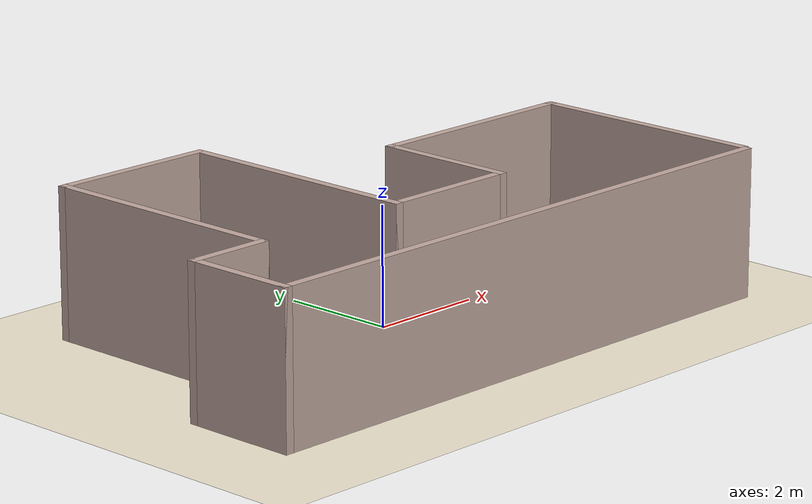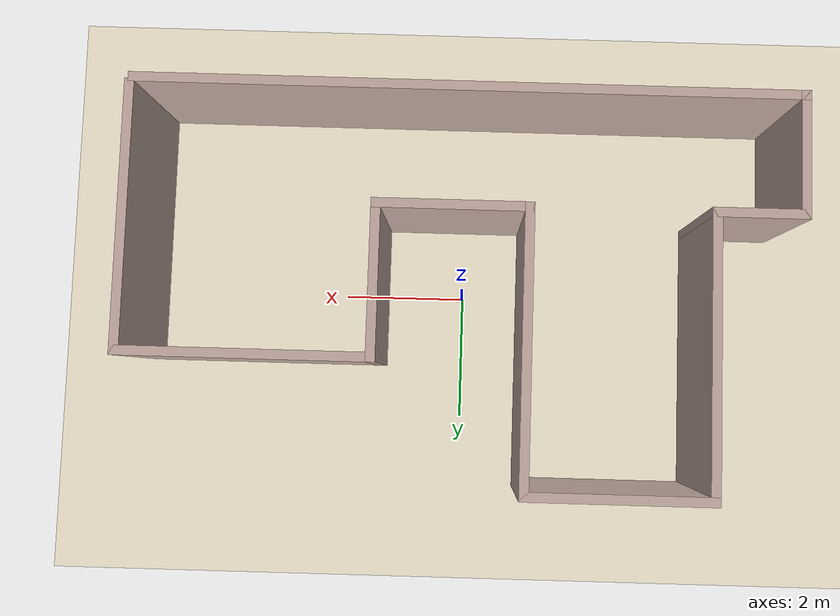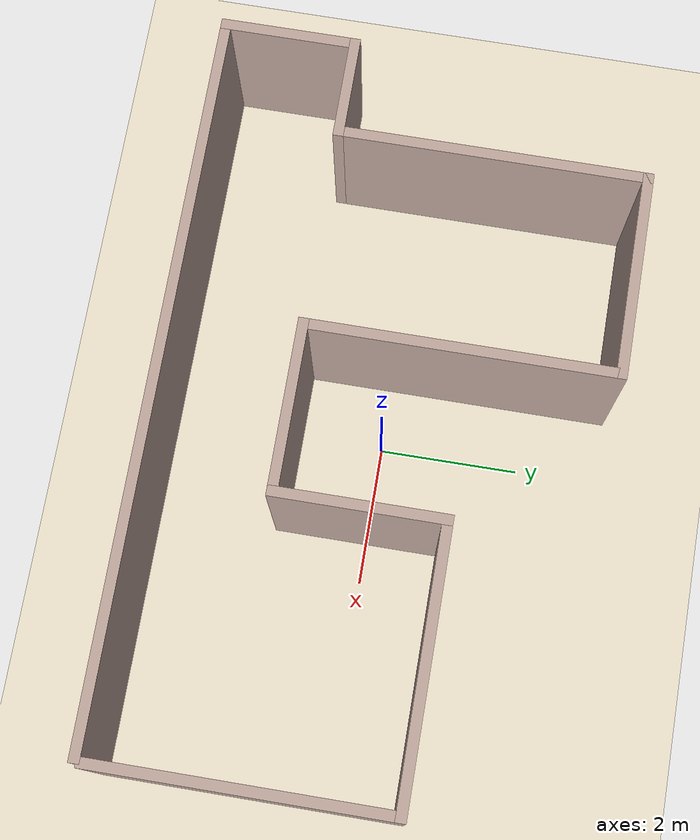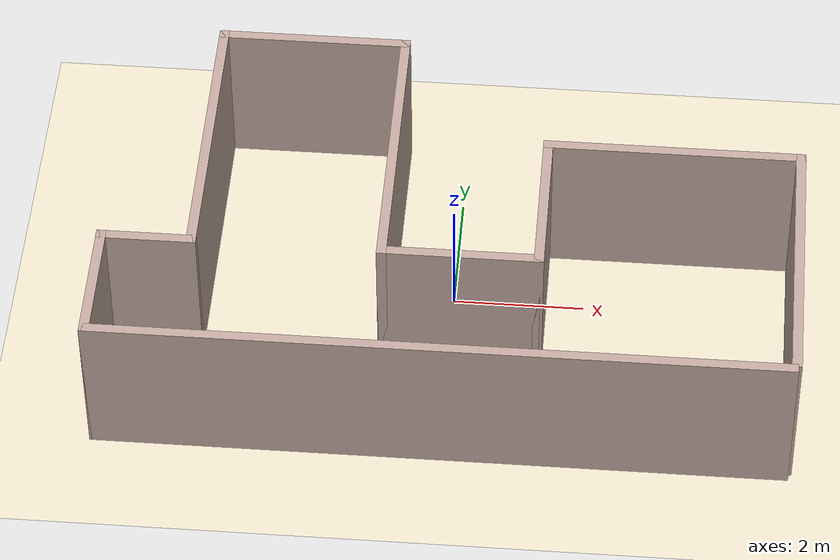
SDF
<?xml version="1.0" ?>

<sdf version="1.8">
  <world name="collision_test">
    <physics name='1ms' type='ignored'>
      <max_step_size>0.001</max_step_size>
      <real_time_factor>1</real_time_factor>
      <real_time_update_rate>1000</real_time_update_rate>
    </physics>
    <plugin name='ignition::gazebo::systems::Physics' filename='ignition-gazebo-physics-system'/>
    <plugin name='ignition::gazebo::systems::UserCommands' filename='ignition-gazebo-user-commands-system'/>
    <plugin name='ignition::gazebo::systems::SceneBroadcaster' filename='ignition-gazebo-scene-broadcaster-system'/>
    <plugin filename="ignition-gazebo-sensors-system" name="ignition::gazebo::systems::Sensors">
      <render_engine>ogre2</render_engine>
    </plugin>

    <plugin filename="libignition-gazebo-contact-system.so" name="ignition::gazebo::systems::Contact">
    </plugin>
    <scene>
      <ambient>1.0 1.0 1.0</ambient>
      <background>0.8 0.8 0.8</background>
    </scene>

    <light type="directional" name="sun">
      <cast_shadows>true</cast_shadows>
      <pose>0 0 10 0 0 0</pose>
      <diffuse>0.8 0.8 0.8 1</diffuse>
      <specular>0.2 0.2 0.2 1</specular>
      <attenuation>
        <range>1000</range>
        <constant>0.9</constant>
        <linear>0.01</linear>
        <quadratic>0.001</quadratic>
      </attenuation>
      <direction>-0.5 0.1 -0.9</direction>
    </light>

    <model name="ground_plane">
      <static>true</static>
      <link name="link">
        <collision name="collision">
          <geometry>
            <plane>
              <normal>0 0 1</normal>
              <size>100 100</size>
            </plane>
          </geometry>
        </collision>
        <visual name="visual">
          <geometry>
            <plane>
              <normal>0 0 1</normal>
              <size>100 100</size>
            </plane>
          </geometry>
          <material>
            <ambient>0.94 0.90 0.81 1</ambient>
            <diffuse>0.94 0.90 0.81 1</diffuse>
            <specular>1 1 1 0</specular>
          </material>
        </visual>
      </link>
    </model>

    <!-- A camera sensor that looks straight down on the map. -->
    <model name="sky_cam">
      <static>true</static>
      <link name="camera_link">
        <pose>0 0 10 1.57 1.57 0</pose>
        <sensor name="sky_cam" type="camera">
          <camera>
            <horizontal_fov>1.047</horizontal_fov>
            <image>
              <width>1024</width>
              <height>768</height>
            </image>
            <clip>
              <near>0.1</near>
              <far>100</far>
            </clip>
          </camera>
          <always_on>1</always_on>
          <update_rate>30</update_rate>
          <visualize>true</visualize>
          <topic>sky_cam</topic>
        </sensor>
      </link>
    </model>

    <include>
        <uri>SimpleWorld</uri>
        <pose>0.0 0.0 0.0 0 0 0</pose>
    </include>

  </world>
</sdf>

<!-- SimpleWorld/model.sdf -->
<sdf version='1.6'>
  <model name='SimpleWorld'>
    <pose frame=''>-1.5558 3.50505 0 0 -0 0</pose>
    <link name='Wall_0'>
      <collision name='Wall_0_Collision'>
        <geometry>
          <box>
            <size>4.5 0.15 2.5</size>
          </box>
        </geometry>
        <pose frame=''>0 0 1.25 0 -0 0</pose>
      </collision>
      <visual name='Wall_0_Visual'>
        <pose frame=''>0 0 1.25 0 -0 0</pose>
        <geometry>
          <box>
            <size>4.5 0.15 2.5</size>
          </box>
        </geometry>
        <material>
          <script>
            <uri>file://media/materials/scripts/gazebo.material</uri>
            <name>Gazebo/Grey</name>
          </script>
          <ambient>0.760784 0.662745 0.627451 1</ambient>
        </material>
      </visual>
      <pose frame=''>-3.85 0.925 0 0 0 -1.5708</pose>
    </link>
    <link name='Wall_13'>
      <collision name='Wall_13_Collision'>
        <geometry>
          <box>
            <size>1.5 0.15 2.5</size>
          </box>
        </geometry>
        <pose frame=''>0 0 1.25 0 -0 0</pose>
      </collision>
      <visual name='Wall_13_Visual'>
        <pose frame=''>0 0 1.25 0 -0 0</pose>
        <geometry>
          <box>
            <size>1.5 0.15 2.5</size>
          </box>
        </geometry>
        <material>
          <script>
            <uri>file://media/materials/scripts/gazebo.material</uri>
            <name>Gazebo/Grey</name>
          </script>
          <ambient>0.760784 0.662745 0.627451 1</ambient>
        </material>
      </visual>
      <pose frame=''>-4.525 -1.25 0 0 -0 3.14159</pose>
    </link>
    <link name='Wall_14'>
      <collision name='Wall_14_Collision'>
        <geometry>
          <box>
            <size>2 0.15 2.5</size>
          </box>
        </geometry>
        <pose frame=''>0 0 1.25 0 -0 0</pose>
      </collision>
      <visual name='Wall_14_Visual'>
        <pose frame=''>0 0 1.25 0 -0 0</pose>
        <geometry>
          <box>
            <size>2 0.15 2.5</size>
          </box>
        </geometry>
        <material>
          <script>
            <uri>file://media/materials/scripts/gazebo.material</uri>
            <name>Gazebo/Grey</name>
          </script>
          <ambient>0.760784 0.662745 0.627451 1</ambient>
        </material>
      </visual>
      <pose frame=''>-5.2 -2.175 0 0 0 -1.5708</pose>
    </link>
    <link name='Wall_15'>
      <collision name='Wall_15_Collision'>
        <geometry>
          <box>
            <size>10.5 0.15 2.5</size>
          </box>
        </geometry>
        <pose frame=''>0 0 1.25 0 -0 0</pose>
      </collision>
      <visual name='Wall_15_Visual'>
        <pose frame=''>0 0 1.25 0 -0 0</pose>
        <geometry>
          <box>
            <size>10.5 0.15 2.5</size>
          </box>
        </geometry>
        <material>
          <script>
            <uri>file://media/materials/scripts/gazebo.material</uri>
            <name>Gazebo/Grey</name>
          </script>
          <ambient>0.760784 0.662745 0.627451 1</ambient>
        </material>
      </visual>
      <pose frame=''>-0.025 -3.1 0 0 -0 0</pose>
    </link>
    <link name='Wall_3'>
      <collision name='Wall_3_Collision'>
        <geometry>
          <box>
            <size>3 0.15 2.5</size>
          </box>
        </geometry>
        <pose frame=''>0 0 1.25 0 -0 0</pose>
      </collision>
      <visual name='Wall_3_Visual'>
        <pose frame=''>0 0 1.25 0 -0 0</pose>
        <geometry>
          <box>
            <size>3 0.15 2.5</size>
          </box>
        </geometry>
        <material>
          <script>
            <uri>file://media/materials/scripts/gazebo.material</uri>
            <name>Gazebo/Grey</name>
          </script>
          <ambient>0.760784 0.662745 0.627451 1</ambient>
        </material>
      </visual>
      <pose frame=''>-2.425 3.1 0 0 -0 0</pose>
    </link>
    <link name='Wall_4'>
      <collision name='Wall_4_Collision'>
        <geometry>
          <box>
            <size>4.5 0.15 2.5</size>
          </box>
        </geometry>
        <pose frame=''>0 0 1.25 0 -0 0</pose>
      </collision>
      <visual name='Wall_4_Visual'>
        <pose frame=''>0 0 1.25 0 -0 0</pose>
        <geometry>
          <box>
            <size>4.5 0.15 2.5</size>
          </box>
        </geometry>
        <material>
          <script>
            <uri>file://media/materials/scripts/gazebo.material</uri>
            <name>Gazebo/Grey</name>
          </script>
          <ambient>0.760784 0.662745 0.627451 1</ambient>
        </material>
      </visual>
      <pose frame=''>-1 0.925 0 0 0 -1.5708</pose>
    </link>
    <link name='Wall_5'>
      <collision name='Wall_5_Collision'>
        <geometry>
          <box>
            <size>2.5 0.15 2.5</size>
          </box>
        </geometry>
        <pose frame=''>0 0 1.25 0 -0 0</pose>
      </collision>
      <visual name='Wall_5_Visual'>
        <pose frame=''>0 0 1.25 0 -0 0</pose>
        <geometry>
          <box>
            <size>2.5 0.15 2.5</size>
          </box>
        </geometry>
        <material>
          <script>
            <uri>file://media/materials/scripts/gazebo.material</uri>
            <name>Gazebo/Grey</name>
          </script>
          <ambient>0.760784 0.662745 0.627451 1</ambient>
        </material>
      </visual>
      <pose frame=''>0.175 -1.25 0 0 -0 0</pose>
    </link>
    <link name='Wall_6'>
      <collision name='Wall_6_Collision'>
        <geometry>
          <box>
            <size>2.5 0.15 2.5</size>
          </box>
        </geometry>
        <pose frame=''>0 0 1.25 0 -0 0</pose>
      </collision>
      <visual name='Wall_6_Visual'>
        <pose frame=''>0 0 1.25 0 -0 0</pose>
        <geometry>
          <box>
            <size>2.5 0.15 2.5</size>
          </box>
        </geometry>
        <material>
          <script>
            <uri>file://media/materials/scripts/gazebo.material</uri>
            <name>Gazebo/Grey</name>
          </script>
          <ambient>0.760784 0.662745 0.627451 1</ambient>
        </material>
      </visual>
      <pose frame=''>1.35 -0.075 0 0 -0 1.5708</pose>
    </link>
    <link name='Wall_7'>
      <collision name='Wall_7_Collision'>
        <geometry>
          <box>
            <size>4 0.15 2.5</size>
          </box>
        </geometry>
        <pose frame=''>0 0 1.25 0 -0 0</pose>
      </collision>
      <visual name='Wall_7_Visual'>
        <pose frame=''>0 0 1.25 0 -0 0</pose>
        <geometry>
          <box>
            <size>4 0.15 2.5</size>
          </box>
        </geometry>
        <material>
          <script>
            <uri>file://media/materials/scripts/gazebo.material</uri>
            <name>Gazebo/Grey</name>
          </script>
          <ambient>0.760784 0.662745 0.627451 1</ambient>
        </material>
      </visual>
      <pose frame=''>3.275 1.1 0 0 -0 0</pose>
    </link>
    <link name='Wall_8'>
      <collision name='Wall_8_Collision'>
        <geometry>
          <box>
            <size>4.25 0.15 2.5</size>
          </box>
        </geometry>
        <pose frame=''>0 0 1.25 0 -0 0</pose>
      </collision>
      <visual name='Wall_8_Visual'>
        <pose frame=''>0 0 1.25 0 -0 0</pose>
        <geometry>
          <box>
            <size>4.25 0.15 2.5</size>
          </box>
        </geometry>
        <material>
          <script>
            <uri>file://media/materials/scripts/gazebo.material</uri>
            <name>Gazebo/Grey</name>
          </script>
          <ambient>0.760784 0.662745 0.627451 1</ambient>
        </material>
      </visual>
      <pose frame=''>5.2 -0.95 0 0 0 -1.5708</pose>
    </link>
    <static>1</static>
  </model>
</sdf>
